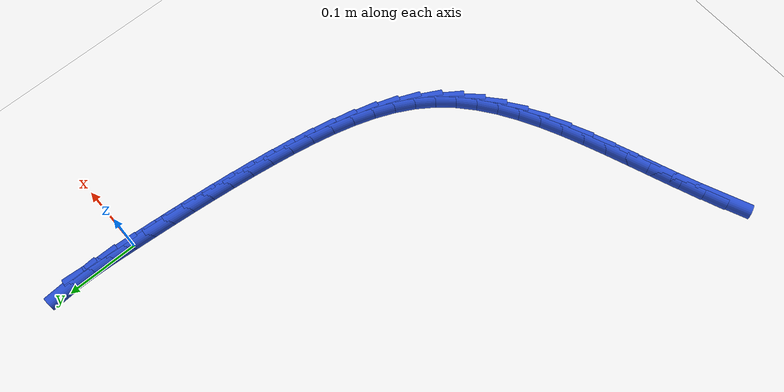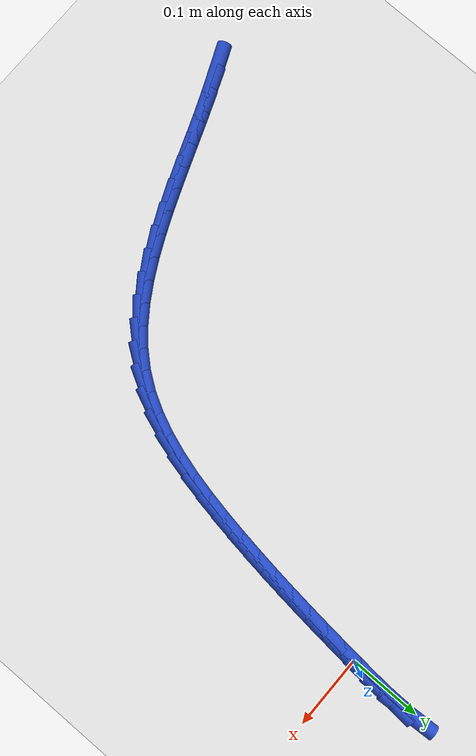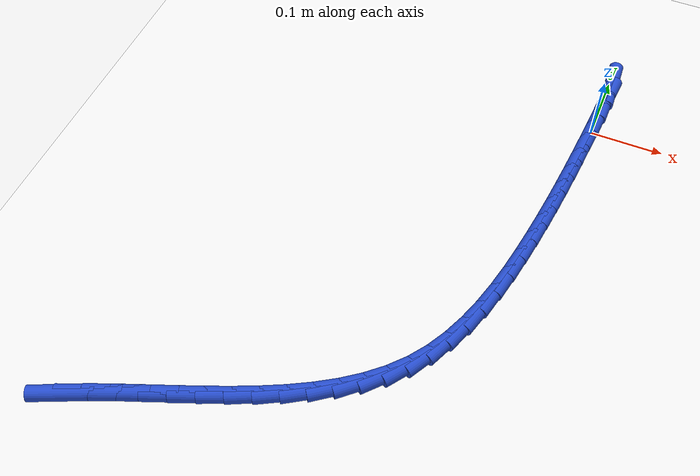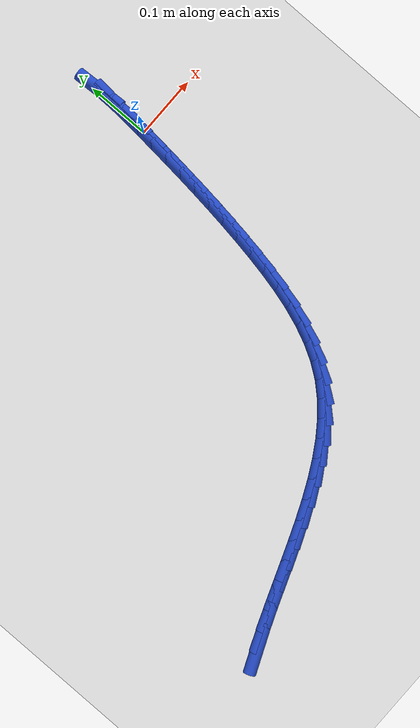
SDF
<sdf version="1.6">
 <world name="default">
  <model name="ground_plane">
   <static>1</static>
   <link name="link">
    <collision name="collision">
     <geometry><plane><normal>0 0 1</normal><size>100 100</size></plane></geometry>
     <surface><friction><ode><mu>100</mu><mu2>50</mu2></ode></friction></surface>
    </collision>
    <visual name="visual">
     <cast_shadows>0</cast_shadows>
     <geometry><plane><normal>0 0 1</normal><size>100 100</size></plane></geometry>
     <material>
      <script><uri>file://media/materials/scripts/gazebo.material</uri><name>Gazebo/WhiteGlow</name></script>
     </material>
    </visual>
   </link>
  </model>
  <model name="line">
   <link name="link_0">
    <pose>2.8189256484623115e-17 0.0 0.01 0 1.57 1.494889805326992</pose>
    <collision name="collision">
     <geometry><cylinder><radius>0.01</radius><length>0.08</length></cylinder></geometry>
    </collision>
    <visual name="visual">
     <material>
      <script><name>Gazebo/Blue</name><uri>file://media/materials/scripts/gazebo.material</uri></script>
     </material>
     <geometry><cylinder><radius>0.01</radius><length>0.08</length></cylinder></geometry>
    </visual>
   </link>
   <link name="link_1">
    <pose>0.0022317643010857065 0.029344992816487968 0.01 0 1.57 1.518458784926775</pose>
    <collision name="collision">
     <geometry><cylinder><radius>0.01</radius><length>0.08</length></cylinder></geometry>
    </collision>
    <visual name="visual">
     <material>
      <script><name>Gazebo/Blue</name><uri>file://media/materials/scripts/gazebo.material</uri></script>
     </material>
     <geometry><cylinder><radius>0.01</radius><length>0.08</length></cylinder></geometry>
    </visual>
   </link>
   <link name="link_2">
    <pose>0.0037677922287442937 0.058666682590855446 0.01 0 1.57 1.5623826022286036</pose>
    <collision name="collision">
     <geometry><cylinder><radius>0.01</radius><length>0.08</length></cylinder></geometry>
    </collision>
    <visual name="visual">
     <material>
      <script><name>Gazebo/Blue</name><uri>file://media/materials/scripts/gazebo.material</uri></script>
     </material>
     <geometry><cylinder><radius>0.01</radius><length>0.08</length></cylinder></geometry>
    </visual>
   </link>
   <link name="link_3">
    <pose>0.004015538080015707 0.08811143125747996 0.01 0 1.57 -1.5158918603189455</pose>
    <collision name="collision">
     <geometry><cylinder><radius>0.01</radius><length>0.08</length></cylinder></geometry>
    </collision>
    <visual name="visual">
     <material>
      <script><name>Gazebo/Blue</name><uri>file://media/materials/scripts/gazebo.material</uri></script>
     </material>
     <geometry><cylinder><radius>0.01</radius><length>0.08</length></cylinder></geometry>
    </visual>
   </link>
   <link name="link_252">
    <pose>-0.46472854292117854 -0.6281485991052447 0.01 0 1.57 0.40919710889664035</pose>
    <collision name="collision">
     <geometry><cylinder><radius>0.01</radius><length>0.08</length></cylinder></geometry>
    </collision>
    <visual name="visual">
     <material>
      <script><name>Gazebo/Blue</name><uri>file://media/materials/scripts/gazebo.material</uri></script>
     </material>
     <geometry><cylinder><radius>0.01</radius><length>0.08</length></cylinder></geometry>
    </visual>
   </link>
   <link name="link_253">
    <pose>-0.4352033979078671 -0.6153442234789094 0.01 0 1.57 0.3831440132829373</pose>
    <collision name="collision">
     <geometry><cylinder><radius>0.01</radius><length>0.08</length></cylinder></geometry>
    </collision>
    <visual name="visual">
     <material>
      <script><name>Gazebo/Blue</name><uri>file://media/materials/scripts/gazebo.material</uri></script>
     </material>
     <geometry><cylinder><radius>0.01</radius><length>0.08</length></cylinder></geometry>
    </visual>
   </link>
   <link name="link_254">
    <pose>-0.4048775759832451 -0.6031210098526935 0.01 0 1.57 0.3677992252521592</pose>
    <collision name="collision">
     <geometry><cylinder><radius>0.01</radius><length>0.08</length></cylinder></geometry>
    </collision>
    <visual name="visual">
     <material>
      <script><name>Gazebo/Blue</name><uri>file://media/materials/scripts/gazebo.material</uri></script>
     </material>
     <geometry><cylinder><radius>0.01</radius><length>0.08</length></cylinder></geometry>
    </visual>
   </link>
   <link name="link_255">
    <pose>-0.3740466656619532 -0.5912408284299042 0.01 0 1.57 0.36258170374052506</pose>
    <collision name="collision">
     <geometry><cylinder><radius>0.01</radius><length>0.08</length></cylinder></geometry>
    </collision>
    <visual name="visual">
     <material>
      <script><name>Gazebo/Blue</name><uri>file://media/materials/scripts/gazebo.material</uri></script>
     </material>
     <geometry><cylinder><radius>0.01</radius><length>0.08</length></cylinder></geometry>
    </visual>
   </link>
   <link name="link_256">
    <pose>-0.3430062554586322 -0.5794655494138492 0.01 0 1.57 0.36725820557525785</pose>
    <collision name="collision">
     <geometry><cylinder><radius>0.01</radius><length>0.08</length></cylinder></geometry>
    </collision>
    <visual name="visual">
     <material>
      <script><name>Gazebo/Blue</name><uri>file://media/materials/scripts/gazebo.material</uri></script>
     </material>
     <geometry><cylinder><radius>0.01</radius><length>0.08</length></cylinder></geometry>
    </visual>
   </link>
   <link name="link_257">
    <pose>-0.31205193388792274 -0.567557043007836 0.01 0 1.57 0.3819381476010192</pose>
    <collision name="collision">
     <geometry><cylinder><radius>0.01</radius><length>0.08</length></cylinder></geometry>
    </collision>
    <visual name="visual">
     <material>
      <script><name>Gazebo/Blue</name><uri>file://media/materials/scripts/gazebo.material</uri></script>
     </material>
     <geometry><cylinder><radius>0.01</radius><length>0.08</length></cylinder></geometry>
    </visual>
   </link>
   <link name="link_258">
    <pose>-0.28147928946446543 -0.5552771794151721 0.01 0 1.57 0.40706701514517674</pose>
    <collision name="collision">
     <geometry><cylinder><radius>0.01</radius><length>0.08</length></cylinder></geometry>
    </collision>
    <visual name="visual">
     <material>
      <script><name>Gazebo/Blue</name><uri>file://media/materials/scripts/gazebo.material</uri></script>
     </material>
     <geometry><cylinder><radius>0.01</radius><length>0.08</length></cylinder></geometry>
    </visual>
   </link>
   <link name="link_259">
    <pose>-0.2515839107029009 -0.5423878288391648 0.01 0 1.57 0.44341358590349744</pose>
    <collision name="collision">
     <geometry><cylinder><radius>0.01</radius><length>0.08</length></cylinder></geometry>
    </collision>
    <visual name="visual">
     <material>
      <script><name>Gazebo/Blue</name><uri>file://media/materials/scripts/gazebo.material</uri></script>
     </material>
     <geometry><cylinder><radius>0.01</radius><length>0.08</length></cylinder></geometry>
    </visual>
   </link>
   <link name="link_260">
    <pose>-0.22266138611786987 -0.5286508614831218 0.01 0 1.57 0.4920346920453874</pose>
    <collision name="collision">
     <geometry><cylinder><radius>0.01</radius><length>0.08</length></cylinder></geometry>
    </collision>
    <visual name="visual">
     <material>
      <script><name>Gazebo/Blue</name><uri>file://media/materials/scripts/gazebo.material</uri></script>
     </material>
     <geometry><cylinder><radius>0.01</radius><length>0.08</length></cylinder></geometry>
    </visual>
   </link>
   <link name="link_261">
    <pose>-0.1950073042240122 -0.51382814755035 0.01 0 1.57 0.5541857451971216</pose>
    <collision name="collision">
     <geometry><cylinder><radius>0.01</radius><length>0.08</length></cylinder></geometry>
    </collision>
    <visual name="visual">
     <material>
      <script><name>Gazebo/Blue</name><uri>file://media/materials/scripts/gazebo.material</uri></script>
     </material>
     <geometry><cylinder><radius>0.01</radius><length>0.08</length></cylinder></geometry>
    </visual>
   </link>
   <link name="link_262">
    <pose>-0.1689172535359702 -0.49768155724415797 0.01 0 1.57 0.6311262805200698</pose>
    <collision name="collision">
     <geometry><cylinder><radius>0.01</radius><length>0.08</length></cylinder></geometry>
    </collision>
    <visual name="visual">
     <material>
      <script><name>Gazebo/Blue</name><uri>file://media/materials/scripts/gazebo.material</uri></script>
     </material>
     <geometry><cylinder><radius>0.01</radius><length>0.08</length></cylinder></geometry>
    </visual>
   </link>
   <link name="link_263">
    <pose>-0.14468682256838372 -0.4799729607678525 0.01 0 1.57 0.7237580670262298</pose>
    <collision name="collision">
     <geometry><cylinder><radius>0.01</radius><length>0.08</length></cylinder></geometry>
    </collision>
    <visual name="visual">
     <material>
      <script><name>Gazebo/Blue</name><uri>file://media/materials/scripts/gazebo.material</uri></script>
     </material>
     <geometry><cylinder><radius>0.01</radius><length>0.08</length></cylinder></geometry>
    </visual>
   </link>
   <link name="link_264">
    <pose>-0.12261159983589334 -0.46046422832474104 0.01 0 1.57 0.8320610282714892</pose>
    <collision name="collision">
     <geometry><cylinder><radius>0.01</radius><length>0.08</length></cylinder></geometry>
    </collision>
    <visual name="visual">
     <material>
      <script><name>Gazebo/Blue</name><uri>file://media/materials/scripts/gazebo.material</uri></script>
     </material>
     <geometry><cylinder><radius>0.01</radius><length>0.08</length></cylinder></geometry>
    </visual>
   </link>
   <link name="link_265">
    <pose>-0.10298717385313982 -0.43891723011813144 0.01 0 1.57 0.9521829620786536</pose>
    <collision name="collision">
     <geometry><cylinder><radius>0.01</radius><length>0.08</length></cylinder></geometry>
    </collision>
    <visual name="visual">
     <material>
      <script><name>Gazebo/Blue</name><uri>file://media/materials/scripts/gazebo.material</uri></script>
     </material>
     <geometry><cylinder><radius>0.01</radius><length>0.08</length></cylinder></geometry>
    </visual>
   </link>
   <link name="link_266">
    <pose>-0.0860622067319514 -0.41514012165056813 0.01 0 1.57 1.0638690830823894</pose>
    <collision name="collision">
     <geometry><cylinder><radius>0.01</radius><length>0.08</length></cylinder></geometry>
    </collision>
    <visual name="visual">
     <material>
      <script><name>Gazebo/Blue</name><uri>file://media/materials/scripts/gazebo.material</uri></script>
     </material>
     <geometry><cylinder><radius>0.01</radius><length>0.08</length></cylinder></geometry>
    </visual>
   </link>
   <link name="link_267">
    <pose>-0.07171558520984016 -0.38930578196667187 0.01 0 1.57 1.157983292240099</pose>
    <collision name="collision">
     <geometry><cylinder><radius>0.01</radius><length>0.08</length></cylinder></geometry>
    </collision>
    <visual name="visual">
     <material>
      <script><name>Gazebo/Blue</name><uri>file://media/materials/scripts/gazebo.material</uri></script>
     </material>
     <geometry><cylinder><radius>0.01</radius><length>0.08</length></cylinder></geometry>
    </visual>
   </link>
   <link name="link_268">
    <pose>-0.0596510306288787 -0.3617598624153102 0.01 0 1.57 1.2353227987668596</pose>
    <collision name="collision">
     <geometry><cylinder><radius>0.01</radius><length>0.08</length></cylinder></geometry>
    </collision>
    <visual name="visual">
     <material>
      <script><name>Gazebo/Blue</name><uri>file://media/materials/scripts/gazebo.material</uri></script>
     </material>
     <geometry><cylinder><radius>0.01</radius><length>0.08</length></cylinder></geometry>
    </visual>
   </link>
   <link name="link_269">
    <pose>-0.04957121459820282 -0.3328490497369462 0.01 0 1.57 1.2974071728482424</pose>
    <collision name="collision">
     <geometry><cylinder><radius>0.01</radius><length>0.08</length></cylinder></geometry>
    </collision>
    <visual name="visual">
     <material>
      <script><name>Gazebo/Blue</name><uri>file://media/materials/scripts/gazebo.material</uri></script>
     </material>
     <geometry><cylinder><radius>0.01</radius><length>0.08</length></cylinder></geometry>
    </visual>
   </link>
   <link name="link_270">
    <pose>-0.04117880872694805 -0.30292003067204204 0.01 0 1.57 1.3458393511965128</pose>
    <collision name="collision">
     <geometry><cylinder><radius>0.01</radius><length>0.08</length></cylinder></geometry>
    </collision>
    <visual name="visual">
     <material>
      <script><name>Gazebo/Blue</name><uri>file://media/materials/scripts/gazebo.material</uri></script>
     </material>
     <geometry><cylinder><radius>0.01</radius><length>0.08</length></cylinder></geometry>
    </visual>
   </link>
   <link name="link_271">
    <pose>-0.034176484624250714 -0.2723194919610626 0.01 0 1.57 1.381981275400248</pose>
    <collision name="collision">
     <geometry><cylinder><radius>0.01</radius><length>0.08</length></cylinder></geometry>
    </collision>
    <visual name="visual">
     <material>
      <script><name>Gazebo/Blue</name><uri>file://media/materials/scripts/gazebo.material</uri></script>
     </material>
     <geometry><cylinder><radius>0.01</radius><length>0.08</length></cylinder></geometry>
    </visual>
   </link>
   <link name="link_272">
    <pose>-0.02826691389924628 -0.24139412034447 0.01 0 1.57 1.4068845879797676</pose>
    <collision name="collision">
     <geometry><cylinder><radius>0.01</radius><length>0.08</length></cylinder></geometry>
    </collision>
    <visual name="visual">
     <material>
      <script><name>Gazebo/Blue</name><uri>file://media/materials/scripts/gazebo.material</uri></script>
     </material>
     <geometry><cylinder><radius>0.01</radius><length>0.08</length></cylinder></geometry>
    </visual>
   </link>
   <link name="link_273">
    <pose>-0.023155025738373695 -0.21048708755613063 0.01 0 1.57 1.4246936978604956</pose>
    <collision name="collision">
     <geometry><cylinder><radius>0.01</radius><length>0.08</length></cylinder></geometry>
    </collision>
    <visual name="visual">
     <material>
      <script><name>Gazebo/Blue</name><uri>file://media/materials/scripts/gazebo.material</uri></script>
     </material>
     <geometry><cylinder><radius>0.01</radius><length>0.08</length></cylinder></geometry>
    </visual>
   </link>
   <link name="link_274">
    <pose>-0.018638879741225245 -0.17979656297887323 0.01 0 1.57 1.440321875623272</pose>
    <collision name="collision">
     <geometry><cylinder><radius>0.01</radius><length>0.08</length></cylinder></geometry>
    </collision>
    <visual name="visual">
     <material>
      <script><name>Gazebo/Blue</name><uri>file://media/materials/scripts/gazebo.material</uri></script>
     </material>
     <geometry><cylinder><radius>0.01</radius><length>0.08</length></cylinder></geometry>
    </visual>
   </link>
   <link name="link_275">
    <pose>-0.014640715106534464 -0.1493273706294247 0.01 0 1.57 1.4540223867889694</pose>
    <collision name="collision">
     <geometry><cylinder><radius>0.01</radius><length>0.08</length></cylinder></geometry>
    </collision>
    <visual name="visual">
     <material>
      <script><name>Gazebo/Blue</name><uri>file://media/materials/scripts/gazebo.material</uri></script>
     </material>
     <geometry><cylinder><radius>0.01</radius><length>0.08</length></cylinder></geometry>
    </visual>
   </link>
   <link name="link_276">
    <pose>-0.011091400052302906 -0.11907089929923313 0.01 0 1.57 1.4657156501830704</pose>
    <collision name="collision">
     <geometry><cylinder><radius>0.01</radius><length>0.08</length></cylinder></geometry>
    </collision>
    <visual name="visual">
     <material>
      <script><name>Gazebo/Blue</name><uri>file://media/materials/scripts/gazebo.material</uri></script>
     </material>
     <geometry><cylinder><radius>0.01</radius><length>0.08</length></cylinder></geometry>
    </visual>
   </link>
   <link name="link_277">
    <pose>-0.007921802796532132 -0.08901853777974678 0.01 0 1.57 1.4753301524348716</pose>
    <collision name="collision">
     <geometry><cylinder><radius>0.01</radius><length>0.08</length></cylinder></geometry>
    </collision>
    <visual name="visual">
     <material>
      <script><name>Gazebo/Blue</name><uri>file://media/materials/scripts/gazebo.material</uri></script>
     </material>
     <geometry><cylinder><radius>0.01</radius><length>0.08</length></cylinder></geometry>
    </visual>
   </link>
   <link name="link_278">
    <pose>-0.005062791557223692 -0.05916167486241386 0.01 0 1.57 1.4828017291866018</pose>
    <collision name="collision">
     <geometry><cylinder><radius>0.01</radius><length>0.08</length></cylinder></geometry>
    </collision>
    <visual name="visual">
     <material>
      <script><name>Gazebo/Blue</name><uri>file://media/materials/scripts/gazebo.material</uri></script>
     </material>
     <geometry><cylinder><radius>0.01</radius><length>0.08</length></cylinder></geometry>
    </visual>
   </link>
   <link name="link_279">
    <pose>-0.002445234552379068 -0.02949169933868159 0.01 0 1.57 1.4880729047246444</pose>
    <collision name="collision">
     <geometry><cylinder><radius>0.01</radius><length>0.08</length></cylinder></geometry>
    </collision>
    <visual name="visual">
     <material>
      <script><name>Gazebo/Blue</name><uri>file://media/materials/scripts/gazebo.material</uri></script>
     </material>
     <geometry><cylinder><radius>0.01</radius><length>0.08</length></cylinder></geometry>
    </visual>
   </link>
   <link name="link_280">
    <pose>2.5153490401663703e-17 -4.85722573273506e-17 0.01 0 1.57 1.4910923642248104</pose>
    <collision name="collision">
     <geometry><cylinder><radius>0.01</radius><length>0.08</length></cylinder></geometry>
    </collision>
    <visual name="visual">
     <material>
      <script><name>Gazebo/Blue</name><uri>file://media/materials/scripts/gazebo.material</uri></script>
     </material>
     <geometry><cylinder><radius>0.01</radius><length>0.08</length></cylinder></geometry>
    </visual>
   </link>
   <link name="link_281">
    <pose>0.0023420438819121156 0.029322034362183513 0.01 0 1.57 1.4918146260614316</pose>
    <collision name="collision">
     <geometry><cylinder><radius>0.01</radius><length>0.08</length></cylinder></geometry>
    </collision>
    <visual name="visual">
     <material>
      <script><name>Gazebo/Blue</name><uri>file://media/materials/scripts/gazebo.material</uri></script>
     </material>
     <geometry><cylinder><radius>0.01</radius><length>0.08</length></cylinder></geometry>
    </visual>
   </link>
   <link name="link_282">
    <pose>0.004650028875355649 0.0584830149564209 0.01 0 1.57 1.4914524902715114</pose>
    <collision name="collision">
     <geometry><cylinder><radius>0.01</radius><length>0.08</length></cylinder></geometry>
    </collision>
    <visual name="visual">
     <material>
      <script><name>Gazebo/Blue</name><uri>file://media/materials/scripts/gazebo.material</uri></script>
     </material>
     <geometry><cylinder><radius>0.01</radius><length>0.08</length></cylinder></geometry>
    </visual>
   </link>
  </model>
 </world>
</sdf>
